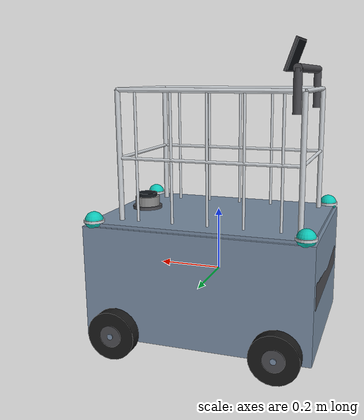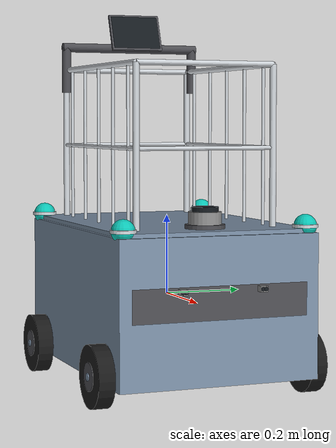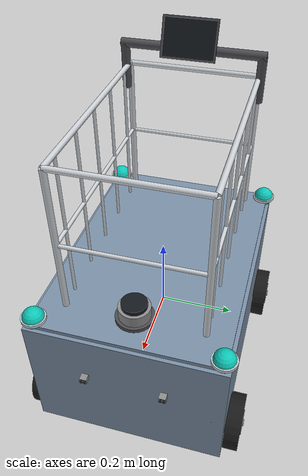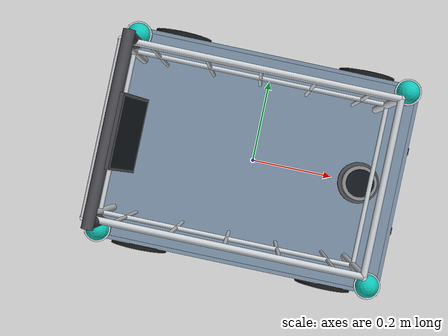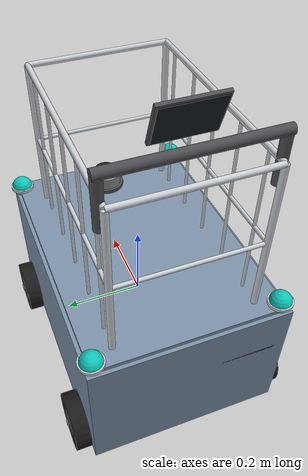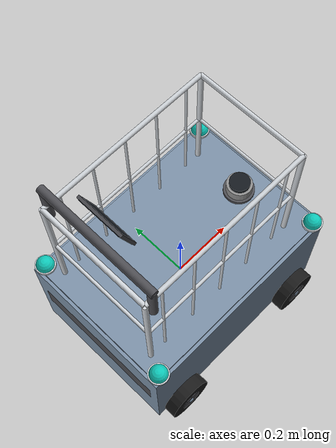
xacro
<?xml version="1.0"?>
<robot name="smart_cart" xmlns:xacro="http://www.ros.org/wiki/xacro">

  <!-- PROPERTIES                                       -->
  <!-- Physics: v1 proven values (separation, radius)   -->
  <!-- Visual: v2 realistic design                      -->

  <!-- Base chassis - v1 dimensions that work with diff-drive -->
  <xacro:property name="cart_length"  value="0.70"/>
  <xacro:property name="cart_width"   value="0.50"/>
  <xacro:property name="cart_height"  value="0.35"/>
  <xacro:property name="cart_mass"    value="15.0"/>

  <!-- Wheels - v1 proven physics values -->
  <xacro:property name="wheel_radius" value="0.075"/>
  <xacro:property name="wheel_width"  value="0.04"/>
  <xacro:property name="wheel_mass"   value="0.5"/>

  <!-- Basket / Handle - visual only, no mass to avoid CoM instability -->
  <xacro:property name="basket_length" value="0.55"/>
  <xacro:property name="basket_width"  value="0.35"/>
  <xacro:property name="basket_height" value="0.40"/>

  <xacro:property name="handle_length" value="0.38"/>
  <xacro:property name="handle_radius" value="0.012"/>

  <!-- UWB beacon -->
  <xacro:property name="uwb_ball_r"   value="0.028"/>

  <!-- LiDAR -->
  <xacro:property name="lidar_radius" value="0.040"/>
  <xacro:property name="lidar_height" value="0.050"/>

  <!-- MATERIALS                                        -->
  <material name="steel_blue_grey">
    <color rgba="0.48 0.56 0.65 1.0"/>
  </material>
  <material name="rubber_black">
    <color rgba="0.10 0.10 0.10 1.0"/>
  </material>
  <material name="stainless_steel">
    <color rgba="0.80 0.82 0.84 1.0"/>
  </material>
  <material name="cyan_uwb">
    <color rgba="0.05 0.78 0.72 1.0"/>
  </material>
  <material name="dark_grey">
    <color rgba="0.30 0.30 0.32 1.0"/>
  </material>
  <material name="grey_sensor">
    <color rgba="0.55 0.55 0.55 1.0"/>
  </material>
  <material name="screen_dark">
    <color rgba="0.08 0.10 0.12 1.0"/>
  </material>

  <!-- BASE LINK                                        -->
  <link name="base_link">
    <!-- Main chassis body -->
    <visual>
      <origin xyz="0 0 0" rpy="0 0 0"/>
      <geometry>
        <box size="${cart_length} ${cart_width} ${cart_height}"/>
      </geometry>
      <material name="steel_blue_grey"/>
    </visual>
    <!-- Top plate -->
    <visual>
      <origin xyz="0 0 ${cart_height/2 + 0.005}" rpy="0 0 0"/>
      <geometry>
        <box size="${cart_length - 0.02} ${cart_width - 0.02} 0.010"/>
      </geometry>
      <material name="steel_blue_grey"/>
    </visual>
    <!-- Front panel detail -->
    <visual>
      <origin xyz="${cart_length/2 - 0.005} 0 0.02" rpy="0 0 0"/>
      <geometry>
        <box size="0.010 ${cart_width - 0.06} 0.08"/>
      </geometry>
      <material name="dark_grey"/>
    </visual>
    <!-- Rear panel detail -->
    <visual>
      <origin xyz="${-(cart_length/2 - 0.005)} 0 0.02" rpy="0 0 0"/>
      <geometry>
        <box size="0.010 ${cart_width - 0.06} 0.08"/>
      </geometry>
      <material name="dark_grey"/>
    </visual>

    <collision>
      <geometry>
        <box size="${cart_length} ${cart_width} ${cart_height}"/>
      </geometry>
    </collision>
    <inertial>
      <mass value="${cart_mass}"/>
      <inertia
        ixx="${(1/12)*cart_mass*(cart_width*cart_width   + cart_height*cart_height)}"
        iyy="${(1/12)*cart_mass*(cart_length*cart_length + cart_height*cart_height)}"
        izz="${(1/12)*cart_mass*(cart_length*cart_length + cart_width*cart_width)}"
        ixy="0" ixz="0" iyz="0"/>
    </inertial>
  </link>

  <!-- WHEEL MACRO - v1 joint convention (proven)       -->
  <!-- Joint rpy="1.5708 0 0" + axis="0 0 -1"          -->
  <!-- Visual has multi-layer design but NO origin rpy  -->
  <!-- (joint rpy handles the horizontal orientation)   -->
  <xacro:macro name="omni_wheel" params="name x y z">
    <link name="${name}_wheel">
      <!-- Outer tyre ring -->
      <visual>
        <geometry>
          <cylinder radius="${wheel_radius}" length="${wheel_width}"/>
        </geometry>
        <material name="rubber_black"/>
      </visual>
      <!-- Hub cap disc -->
      <visual>
        <geometry>
          <cylinder radius="${wheel_radius * 0.45}" length="${wheel_width + 0.004}"/>
        </geometry>
        <material name="dark_grey"/>
      </visual>
      <!-- Centre axle nub -->
      <visual>
        <geometry>
          <cylinder radius="${wheel_radius * 0.12}" length="${wheel_width + 0.010}"/>
        </geometry>
        <material name="steel_blue_grey"/>
      </visual>

      <collision>
        <geometry>
          <cylinder radius="${wheel_radius}" length="${wheel_width}"/>
        </geometry>
      </collision>
      <inertial>
        <mass value="${wheel_mass}"/>
        <inertia
          ixx="${(1/12)*wheel_mass*(3*wheel_radius*wheel_radius + wheel_width*wheel_width)}"
          iyy="${(1/12)*wheel_mass*(3*wheel_radius*wheel_radius + wheel_width*wheel_width)}"
          izz="${(1/2)*wheel_mass*wheel_radius*wheel_radius}"
          ixy="0" ixz="0" iyz="0"/>
      </inertial>
    </link>

    <!-- v1 joint convention: rpy on joint, axis="0 0 -1" in child frame -->
    <joint name="${name}_wheel_joint" type="continuous">
      <parent link="base_link"/>
      <child  link="${name}_wheel"/>
      <origin xyz="${x} ${y} ${z}" rpy="1.5708 0 0"/>
      <axis xyz="0 0 -1"/>
      <dynamics damping="0.01" friction="0.01"/>
    </joint>

    <gazebo reference="${name}_wheel">
      <mu1>0.5</mu1>
      <mu2>0.05</mu2>
      <kp>1e6</kp>
      <kd>1.0</kd>
      <material>Gazebo/Black</material>
    </gazebo>
  </xacro:macro>

  <!-- v1 wheel positions -->
  <xacro:omni_wheel name="front_left"  x=" 0.25" y=" 0.27" z="-0.15"/>
  <xacro:omni_wheel name="front_right" x=" 0.25" y="-0.27" z="-0.15"/>
  <xacro:omni_wheel name="rear_left"   x="-0.25" y=" 0.27" z="-0.15"/>
  <xacro:omni_wheel name="rear_right"  x="-0.25" y="-0.27" z="-0.15"/>

  <!-- SHOPPING BASKET - visual only, no mass/collision  -->
  <link name="basket_link">
    <!-- Corner posts -->
    <visual>
      <origin xyz="${basket_length/2} ${basket_width/2} 0" rpy="0 0 0"/>
      <geometry><cylinder radius="0.008" length="${basket_height}"/></geometry>
      <material name="stainless_steel"/>
    </visual>
    <visual>
      <origin xyz="${basket_length/2} -${basket_width/2} 0" rpy="0 0 0"/>
      <geometry><cylinder radius="0.008" length="${basket_height}"/></geometry>
      <material name="stainless_steel"/>
    </visual>
    <visual>
      <origin xyz="-${basket_length/2} ${basket_width/2} 0" rpy="0 0 0"/>
      <geometry><cylinder radius="0.008" length="${basket_height}"/></geometry>
      <material name="stainless_steel"/>
    </visual>
    <visual>
      <origin xyz="-${basket_length/2} -${basket_width/2} 0" rpy="0 0 0"/>
      <geometry><cylinder radius="0.008" length="${basket_height}"/></geometry>
      <material name="stainless_steel"/>
    </visual>
    <!-- Top rim -->
    <visual>
      <origin xyz="0 ${basket_width/2} ${basket_height/2}" rpy="0 1.5708 0"/>
      <geometry><cylinder radius="0.007" length="${basket_length}"/></geometry>
      <material name="stainless_steel"/>
    </visual>
    <visual>
      <origin xyz="0 -${basket_width/2} ${basket_height/2}" rpy="0 1.5708 0"/>
      <geometry><cylinder radius="0.007" length="${basket_length}"/></geometry>
      <material name="stainless_steel"/>
    </visual>
    <visual>
      <origin xyz="${basket_length/2} 0 ${basket_height/2}" rpy="1.5708 0 0"/>
      <geometry><cylinder radius="0.007" length="${basket_width}"/></geometry>
      <material name="stainless_steel"/>
    </visual>
    <visual>
      <origin xyz="-${basket_length/2} 0 ${basket_height/2}" rpy="1.5708 0 0"/>
      <geometry><cylinder radius="0.007" length="${basket_width}"/></geometry>
      <material name="stainless_steel"/>
    </visual>
    <!-- Bottom frame -->
    <visual>
      <origin xyz="0 ${basket_width/2} -${basket_height/2}" rpy="0 1.5708 0"/>
      <geometry><cylinder radius="0.007" length="${basket_length}"/></geometry>
      <material name="stainless_steel"/>
    </visual>
    <visual>
      <origin xyz="0 -${basket_width/2} -${basket_height/2}" rpy="0 1.5708 0"/>
      <geometry><cylinder radius="0.007" length="${basket_length}"/></geometry>
      <material name="stainless_steel"/>
    </visual>
    <visual>
      <origin xyz="${basket_length/2} 0 -${basket_height/2}" rpy="1.5708 0 0"/>
      <geometry><cylinder radius="0.007" length="${basket_width}"/></geometry>
      <material name="stainless_steel"/>
    </visual>
    <visual>
      <origin xyz="-${basket_length/2} 0 -${basket_height/2}" rpy="1.5708 0 0"/>
      <geometry><cylinder radius="0.007" length="${basket_width}"/></geometry>
      <material name="stainless_steel"/>
    </visual>
    <!-- Mid rails -->
    <visual>
      <origin xyz="0 ${basket_width/2} 0" rpy="0 1.5708 0"/>
      <geometry><cylinder radius="0.005" length="${basket_length}"/></geometry>
      <material name="stainless_steel"/>
    </visual>
    <visual>
      <origin xyz="0 -${basket_width/2} 0" rpy="0 1.5708 0"/>
      <geometry><cylinder radius="0.005" length="${basket_length}"/></geometry>
      <material name="stainless_steel"/>
    </visual>
    <visual>
      <origin xyz="${basket_length/2} 0 0" rpy="1.5708 0 0"/>
      <geometry><cylinder radius="0.005" length="${basket_width}"/></geometry>
      <material name="stainless_steel"/>
    </visual>
    <visual>
      <origin xyz="-${basket_length/2} 0 0" rpy="1.5708 0 0"/>
      <geometry><cylinder radius="0.005" length="${basket_width}"/></geometry>
      <material name="stainless_steel"/>
    </visual>
    <!-- Side wires (left) -->
    <visual><origin xyz="-0.22 ${basket_width/2} 0" rpy="0 0 0"/>
      <geometry><cylinder radius="0.004" length="${basket_height}"/></geometry><material name="stainless_steel"/></visual>
    <visual><origin xyz="-0.11 ${basket_width/2} 0" rpy="0 0 0"/>
      <geometry><cylinder radius="0.004" length="${basket_height}"/></geometry><material name="stainless_steel"/></visual>
    <visual><origin xyz="0.00 ${basket_width/2} 0" rpy="0 0 0"/>
      <geometry><cylinder radius="0.004" length="${basket_height}"/></geometry><material name="stainless_steel"/></visual>
    <visual><origin xyz="0.11 ${basket_width/2} 0" rpy="0 0 0"/>
      <geometry><cylinder radius="0.004" length="${basket_height}"/></geometry><material name="stainless_steel"/></visual>
    <visual><origin xyz="0.22 ${basket_width/2} 0" rpy="0 0 0"/>
      <geometry><cylinder radius="0.004" length="${basket_height}"/></geometry><material name="stainless_steel"/></visual>
    <!-- Side wires (right) -->
    <visual><origin xyz="-0.22 -${basket_width/2} 0" rpy="0 0 0"/>
      <geometry><cylinder radius="0.004" length="${basket_height}"/></geometry><material name="stainless_steel"/></visual>
    <visual><origin xyz="-0.11 -${basket_width/2} 0" rpy="0 0 0"/>
      <geometry><cylinder radius="0.004" length="${basket_height}"/></geometry><material name="stainless_steel"/></visual>
    <visual><origin xyz="0.00 -${basket_width/2} 0" rpy="0 0 0"/>
      <geometry><cylinder radius="0.004" length="${basket_height}"/></geometry><material name="stainless_steel"/></visual>
    <visual><origin xyz="0.11 -${basket_width/2} 0" rpy="0 0 0"/>
      <geometry><cylinder radius="0.004" length="${basket_height}"/></geometry><material name="stainless_steel"/></visual>
    <visual><origin xyz="0.22 -${basket_width/2} 0" rpy="0 0 0"/>
      <geometry><cylinder radius="0.004" length="${basket_height}"/></geometry><material name="stainless_steel"/></visual>

    <!-- No collision, no inertial - purely decorative -->
    <inertial>
      <mass value="0.001"/>
      <inertia ixx="0.000001" iyy="0.000001" izz="0.000001"
               ixy="0" ixz="0" iyz="0"/>
    </inertial>
  </link>

  <joint name="basket_joint" type="fixed">
    <parent link="base_link"/>
    <child  link="basket_link"/>
    <origin xyz="-0.02 0 ${cart_height/2 + basket_height/2}" rpy="0 0 0"/>
  </joint>

  <!-- HANDLE BAR - visual only, no mass/collision      -->
  <link name="handle_link">
    <visual>
      <origin xyz="0 0 0" rpy="1.5708 0 0"/>
      <geometry>
        <cylinder radius="${handle_radius}" length="${handle_length}"/>
      </geometry>
      <material name="dark_grey"/>
    </visual>
    <visual>
      <origin xyz="0 ${handle_length/2 - 0.01} -0.06" rpy="0 0 0"/>
      <geometry>
        <cylinder radius="${handle_radius}" length="0.12"/>
      </geometry>
      <material name="dark_grey"/>
    </visual>
    <visual>
      <origin xyz="0 -${handle_length/2 - 0.01} -0.06" rpy="0 0 0"/>
      <geometry>
        <cylinder radius="${handle_radius}" length="0.12"/>
      </geometry>
      <material name="dark_grey"/>
    </visual>
    <!-- Screen tablet -->
    <visual>
      <origin xyz="0.04 0 0.04" rpy="0 -0.35 0"/>
      <geometry>
        <box size="0.010 0.130 0.090"/>
      </geometry>
      <material name="screen_dark"/>
    </visual>
    <visual>
      <origin xyz="0.041 0 0.04" rpy="0 -0.35 0"/>
      <geometry>
        <box size="0.008 0.140 0.100"/>
      </geometry>
      <material name="dark_grey"/>
    </visual>

    <inertial>
      <mass value="0.001"/>
      <inertia ixx="0.000001" iyy="0.000001" izz="0.000001"
               ixy="0" ixz="0" iyz="0"/>
    </inertial>
  </link>

  <joint name="handle_joint" type="fixed">
    <parent link="basket_link"/>
    <child  link="handle_link"/>
    <origin xyz="-${basket_length/2 - 0.02} 0 ${basket_height/2 + 0.06}" rpy="0 0 0"/>
  </joint>

  <!-- UWB ANCHORS - v2 visual design, v1 positions    -->
  <xacro:macro name="uwb_beacon" params="name x y">
    <link name="${name}_uwb_link">
      <!-- Mounting stud -->
      <visual>
        <origin xyz="0 0 -0.025" rpy="0 0 0"/>
        <geometry><cylinder radius="0.012" length="0.030"/></geometry>
        <material name="dark_grey"/>
      </visual>
      <!-- Beacon sphere -->
      <visual>
        <origin xyz="0 0 0" rpy="0 0 0"/>
        <geometry><sphere radius="${uwb_ball_r}"/></geometry>
        <material name="cyan_uwb"/>
      </visual>
      <!-- Chrome ring -->
      <visual>
        <origin xyz="0 0 0" rpy="0 0 0"/>
        <geometry><cylinder radius="${uwb_ball_r + 0.003}" length="0.008"/></geometry>
        <material name="stainless_steel"/>
      </visual>
      <inertial>
        <mass value="0.05"/>
        <inertia ixx="0.00001" iyy="0.00001" izz="0.00001"
                 ixy="0" ixz="0" iyz="0"/>
      </inertial>
    </link>
    <joint name="${name}_uwb_joint" type="fixed">
      <parent link="base_link"/>
      <child  link="${name}_uwb_link"/>
      <origin xyz="${x} ${y} 0.19" rpy="0 0 0"/>
    </joint>
    <gazebo reference="${name}_uwb_link">
      <material>Gazebo/Cyan</material>
      <emissive>0 0.8 0.8 1</emissive>
    </gazebo>
  </xacro:macro>

  <!-- v1 anchor positions -->
  <xacro:uwb_beacon name="uwb_fl" x=" 0.32" y=" 0.23"/>
  <xacro:uwb_beacon name="uwb_fr" x=" 0.32" y="-0.23"/>
  <xacro:uwb_beacon name="uwb_rl" x="-0.32" y=" 0.23"/>
  <xacro:uwb_beacon name="uwb_rr" x="-0.32" y="-0.23"/>

  <!-- 2D LIDAR - v2 visual, v1 position               -->
  <link name="lidar_link">
    <!-- Housing ring -->
    <visual>
      <origin xyz="0 0 -0.015" rpy="0 0 0"/>
      <geometry>
        <cylinder radius="${lidar_radius + 0.008}" length="0.020"/>
      </geometry>
      <material name="dark_grey"/>
    </visual>
    <!-- Sensor drum -->
    <visual>
      <origin xyz="0 0 0" rpy="0 0 0"/>
      <geometry>
        <cylinder radius="${lidar_radius}" length="${lidar_height}"/>
      </geometry>
      <material name="grey_sensor"/>
    </visual>
    <!-- Lens cap -->
    <visual>
      <origin xyz="0 0 ${lidar_height/2 + 0.006}" rpy="0 0 0"/>
      <geometry>
        <cylinder radius="${lidar_radius - 0.008}" length="0.012"/>
      </geometry>
      <material name="screen_dark"/>
    </visual>
    <collision>
      <geometry>
        <cylinder radius="${lidar_radius}" length="${lidar_height}"/>
      </geometry>
    </collision>
    <inertial>
      <mass value="0.17"/>
      <inertia ixx="0.0001" iyy="0.0001" izz="0.0001"
               ixy="0" ixz="0" iyz="0"/>
    </inertial>
  </link>

  <!-- v1 LiDAR position: above base top, clear of basket -->
  <joint name="lidar_joint" type="fixed">
    <parent link="base_link"/>
    <child  link="lidar_link"/>
    <origin xyz="0.25 0 0.20" rpy="0 0 0"/>
  </joint>

  <gazebo reference="lidar_link">
    <sensor name="lidar" type="gpu_lidar">
      <gz_frame_id>lidar_link</gz_frame_id>
      <topic>scan</topic>
      <update_rate>10</update_rate>
      <always_on>true</always_on>
      <visualize>true</visualize>
      <lidar>
        <scan>
          <horizontal>
            <samples>360</samples>
            <resolution>1</resolution>
            <min_angle>-3.14159265</min_angle>
            <max_angle>3.14159265</max_angle>
          </horizontal>
        </scan>
        <range>
          <min>0.12</min>
          <max>12.0</max>
          <resolution>0.01</resolution>
        </range>
        <noise>
          <type>gaussian</type>
          <mean>0.0</mean>
          <stddev>0.01</stddev>
        </noise>
      </lidar>
    </sensor>
  </gazebo>

  <!-- ULTRASONIC SENSORS - v2 visual, v1 position     -->
  <xacro:macro name="ultrasonic" params="name y_offset">
    <link name="${name}_us_link">
      <!-- Housing block -->
      <visual>
        <geometry><box size="0.018 0.018 0.014"/></geometry>
        <material name="grey_sensor"/>
      </visual>
      <!-- HC-SR04 twin emitters -->
      <visual>
        <origin xyz="0.008  0.004 0" rpy="0 1.5708 0"/>
        <geometry><cylinder radius="0.005" length="0.006"/></geometry>
        <material name="screen_dark"/>
      </visual>
      <visual>
        <origin xyz="0.008 -0.004 0" rpy="0 1.5708 0"/>
        <geometry><cylinder radius="0.005" length="0.006"/></geometry>
        <material name="screen_dark"/>
      </visual>
      <inertial>
        <mass value="0.009"/>
        <inertia ixx="0.00001" iyy="0.00001" izz="0.00001"
                 ixy="0" ixz="0" iyz="0"/>
      </inertial>
    </link>
    <joint name="${name}_us_joint" type="fixed">
      <parent link="base_link"/>
      <child  link="${name}_us_link"/>
      <!-- v1 position -->
      <origin xyz="0.36 ${y_offset} 0.05" rpy="0 0 0"/>
    </joint>
    <gazebo reference="${name}_us_link">
      <sensor name="${name}_ultrasonic" type="gpu_lidar">
        <gz_frame_id>${name}_us_link</gz_frame_id>
        <topic>ultrasonic/${name}</topic>
        <update_rate>10</update_rate>
        <always_on>true</always_on>
        <lidar>
          <scan>
            <horizontal>
              <samples>5</samples>
              <resolution>1</resolution>
              <min_angle>-0.13</min_angle>
              <max_angle>0.13</max_angle>
            </horizontal>
          </scan>
          <range>
            <min>0.02</min>
            <max>4.0</max>
            <resolution>0.01</resolution>
          </range>
        </lidar>
      </sensor>
    </gazebo>
  </xacro:macro>

  <xacro:ultrasonic name="left"  y_offset=" 0.10"/>
  <xacro:ultrasonic name="right" y_offset="-0.10"/>

  <!-- DIFFERENTIAL DRIVE PLUGIN - v1 proven values    -->
  <gazebo>
    <plugin filename="gz-sim-diff-drive-system"
            name="gz::sim::systems::DiffDrive">
      <left_joint>front_left_wheel_joint</left_joint>
      <right_joint>front_right_wheel_joint</right_joint>
      <wheel_separation>0.54</wheel_separation>
      <wheel_radius>0.075</wheel_radius>
      <max_linear_acceleration>1.0</max_linear_acceleration>
      <min_linear_acceleration>-1.0</min_linear_acceleration>
      <max_angular_acceleration>2.0</max_angular_acceleration>
      <max_linear_velocity>1.2</max_linear_velocity>
      <odom_publish_frequency>20</odom_publish_frequency>
      <topic>cmd_vel</topic>
      <odom_topic>odom</odom_topic>
      <tf_topic>/tf</tf_topic>
      <frame_id>odom</frame_id>
      <child_frame_id>base_link</child_frame_id>
    </plugin>
  </gazebo>

  <!-- Joint state publisher plugin -->
  <gazebo>
    <plugin filename="gz-sim-joint-state-publisher-system"
            name="gz::sim::systems::JointStatePublisher">
      <topic>joint_states</topic>
    </plugin>
  </gazebo>

</robot>
